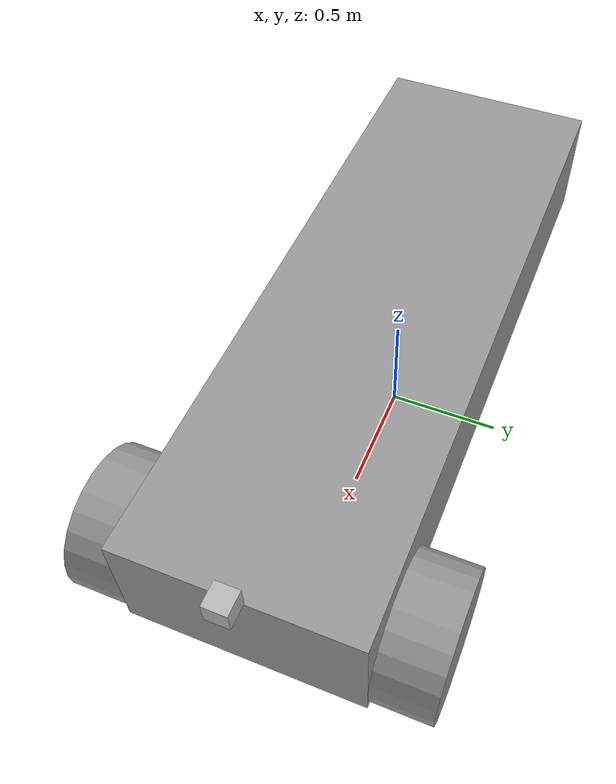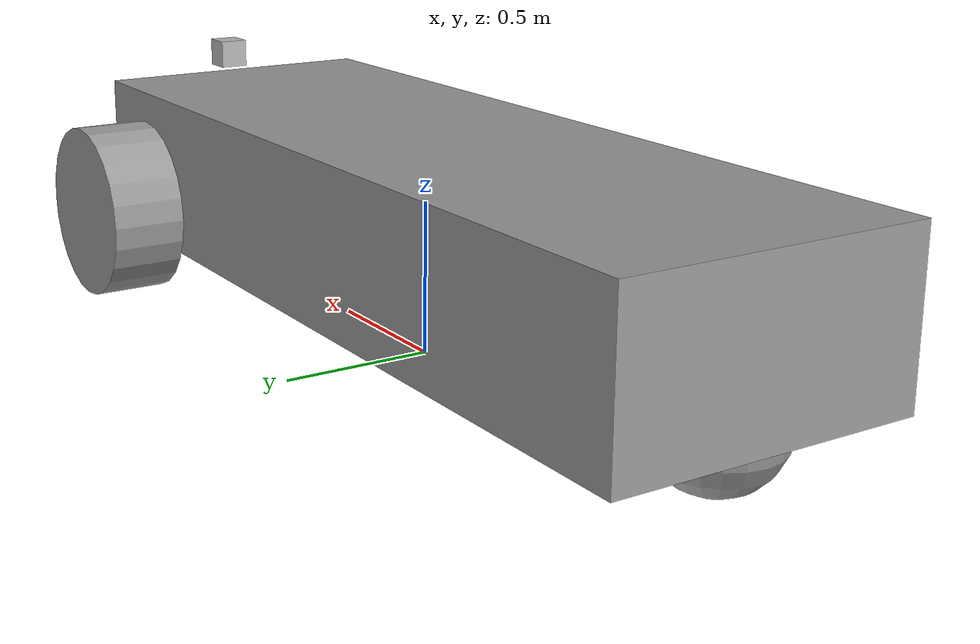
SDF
<?xml version='1.0'?>
<sdf version='1.7'>
  <model name='firstRobot_v2'>
    <link name='chassis'>
      <inertial>
        <mass>1.58642</mass>
        <inertia>
          <ixx>0.169655</ixx>
          <ixy>0</ixy>
          <ixz>0</ixz>
          <iyy>1.21188</iyy>
          <iyz>0</iyz>
          <izz>1.30663</izz>
        </inertia>
        <pose>0 0 0 0 -0 0</pose>
      </inertial>
      <pose>-0.002598 -0.05824 0.44 0 -0 0</pose>
      <gravity>1</gravity>
      <self_collide>0</self_collide>
      <kinematic>0</kinematic>
      <enable_wind>0</enable_wind>
      <visual name='visual'>
        <pose>0 0 0 0 -0 0</pose>
        <geometry>
          <box>
            <size>2.98053 1 0.53226</size>
          </box>
        </geometry>
        <material>
          <lighting>1</lighting>
          <script>
            <uri>file://media/materials/scripts/gazebo.material</uri>
            <name>Gazebo/Grey</name>
          </script>
          <shader type='pixel'>
            <normal_map>__default__</normal_map>
          </shader>
          <ambient>0.3 0.3 0.3 1</ambient>
          <diffuse>0.7 0.7 0.7 1</diffuse>
          <specular>0.01 0.01 0.01 1</specular>
          <emissive>0 0 0 1</emissive>
        </material>
        <transparency>0</transparency>
        <cast_shadows>1</cast_shadows>
      </visual>
      <collision name='collision'>
        <laser_retro>0</laser_retro>
        <max_contacts>10</max_contacts>
        <pose>0 0 0 0 -0 0</pose>
        <geometry>
          <box>
            <size>2.98053 1 0.53226</size>
          </box>
        </geometry>
        <surface>
          <friction>
            <ode>
              <mu>1</mu>
              <mu2>1</mu2>
              <fdir1>0 0 0</fdir1>
              <slip1>0</slip1>
              <slip2>0</slip2>
            </ode>
            <torsional>
              <coefficient>1</coefficient>
              <patch_radius>0</patch_radius>
              <surface_radius>0</surface_radius>
              <use_patch_radius>1</use_patch_radius>
              <ode>
                <slip>0</slip>
              </ode>
            </torsional>
          </friction>
          <bounce>
            <restitution_coefficient>0</restitution_coefficient>
            <threshold>1e+06</threshold>
          </bounce>
          <contact>
            <collide_without_contact>0</collide_without_contact>
            <collide_without_contact_bitmask>1</collide_without_contact_bitmask>
            <collide_bitmask>1</collide_bitmask>
            <ode>
              <soft_cfm>0</soft_cfm>
              <soft_erp>0.2</soft_erp>
              <kp>1e+13</kp>
              <kd>1</kd>
              <max_vel>0.01</max_vel>
              <min_depth>0</min_depth>
            </ode>
            <bullet>
              <split_impulse>1</split_impulse>
              <split_impulse_penetration_threshold>-0.01</split_impulse_penetration_threshold>
              <soft_cfm>0</soft_cfm>
              <soft_erp>0.2</soft_erp>
              <kp>1e+13</kp>
              <kd>1</kd>
            </bullet>
          </contact>
        </surface>
      </collision>
    </link>
    <link name='caster'>
      <inertial>
        <mass>1</mass>
        <inertia>
          <ixx>0.1</ixx>
          <ixy>0</ixy>
          <ixz>0</ixz>
          <iyy>0.1</iyy>
          <iyz>0</iyz>
          <izz>0.1</izz>
        </inertia>
        <pose>0 0 0 0 -0 0</pose>
      </inertial>
      <pose>-1.29286 -0.05824 0.2 0 -0 0</pose>
      <gravity>1</gravity>
      <self_collide>0</self_collide>
      <kinematic>0</kinematic>
      <enable_wind>0</enable_wind>
      <visual name='visual'>
        <pose>0 0 0 0 -0 0</pose>
        <geometry>
          <sphere>
            <radius>0.2</radius>
          </sphere>
        </geometry>
        <material>
          <lighting>1</lighting>
          <script>
            <uri>file://media/materials/scripts/gazebo.material</uri>
            <name>Gazebo/Grey</name>
          </script>
          <shader type='pixel'>
            <normal_map>__default__</normal_map>
          </shader>
          <ambient>0.3 0.3 0.3 1</ambient>
          <diffuse>0.7 0.7 0.7 1</diffuse>
          <specular>0.01 0.01 0.01 1</specular>
          <emissive>0 0 0 1</emissive>
        </material>
        <transparency>0</transparency>
        <cast_shadows>1</cast_shadows>
      </visual>
      <collision name='collision'>
        <laser_retro>0</laser_retro>
        <max_contacts>10</max_contacts>
        <pose>0 0 0 0 -0 0</pose>
        <geometry>
          <sphere>
            <radius>0.2</radius>
          </sphere>
        </geometry>
        <surface>
          <friction>
            <ode>
              <mu>1</mu>
              <mu2>1</mu2>
              <fdir1>0 0 0</fdir1>
              <slip1>0</slip1>
              <slip2>0</slip2>
            </ode>
            <torsional>
              <coefficient>1</coefficient>
              <patch_radius>0</patch_radius>
              <surface_radius>0</surface_radius>
              <use_patch_radius>1</use_patch_radius>
              <ode>
                <slip>0</slip>
              </ode>
            </torsional>
          </friction>
          <bounce>
            <restitution_coefficient>0</restitution_coefficient>
            <threshold>1e+06</threshold>
          </bounce>
          <contact>
            <collide_without_contact>0</collide_without_contact>
            <collide_without_contact_bitmask>1</collide_without_contact_bitmask>
            <collide_bitmask>1</collide_bitmask>
            <ode>
              <soft_cfm>0</soft_cfm>
              <soft_erp>0.2</soft_erp>
              <kp>1e+13</kp>
              <kd>1</kd>
              <max_vel>0.01</max_vel>
              <min_depth>0</min_depth>
            </ode>
            <bullet>
              <split_impulse>1</split_impulse>
              <split_impulse_penetration_threshold>-0.01</split_impulse_penetration_threshold>
              <soft_cfm>0</soft_cfm>
              <soft_erp>0.2</soft_erp>
              <kp>1e+13</kp>
              <kd>1</kd>
            </bullet>
          </contact>
        </surface>
      </collision>
    </link>
    <link name='right_wheel'>
      <inertial>
        <mass>1</mass>
        <inertia>
          <ixx>0.145833</ixx>
          <ixy>0</ixy>
          <ixz>0</ixz>
          <iyy>0.145833</iyy>
          <iyz>0</iyz>
          <izz>0.125</izz>
        </inertia>
        <pose>0 0 0 0 -0 0</pose>
      </inertial>
      <pose>1.18766 -0.683479 0.3 1.57 -0 0</pose>
      <gravity>1</gravity>
      <self_collide>0</self_collide>
      <kinematic>0</kinematic>
      <enable_wind>0</enable_wind>
      <visual name='visual'>
        <pose>0 0 0 0 -0 0</pose>
        <geometry>
          <cylinder>
            <radius>0.3</radius>
            <length>0.25</length>
          </cylinder>
        </geometry>
        <material>
          <lighting>1</lighting>
          <script>
            <uri>file://media/materials/scripts/gazebo.material</uri>
            <name>Gazebo/Grey</name>
          </script>
          <shader type='pixel'>
            <normal_map>__default__</normal_map>
          </shader>
          <ambient>0.3 0.3 0.3 1</ambient>
          <diffuse>0.7 0.7 0.7 1</diffuse>
          <specular>0.01 0.01 0.01 1</specular>
          <emissive>0 0 0 1</emissive>
        </material>
        <transparency>0</transparency>
        <cast_shadows>1</cast_shadows>
      </visual>
      <collision name='collision'>
        <laser_retro>0</laser_retro>
        <max_contacts>10</max_contacts>
        <pose>0 0 0 0 -0 0</pose>
        <geometry>
          <cylinder>
            <radius>0.3</radius>
            <length>0.25</length>
          </cylinder>
        </geometry>
        <surface>
          <friction>
            <ode>
              <mu>1</mu>
              <mu2>1</mu2>
              <fdir1>0 0 0</fdir1>
              <slip1>0</slip1>
              <slip2>0</slip2>
            </ode>
            <torsional>
              <coefficient>1</coefficient>
              <patch_radius>0</patch_radius>
              <surface_radius>0</surface_radius>
              <use_patch_radius>1</use_patch_radius>
              <ode>
                <slip>0</slip>
              </ode>
            </torsional>
          </friction>
          <bounce>
            <restitution_coefficient>0</restitution_coefficient>
            <threshold>1e+06</threshold>
          </bounce>
          <contact>
            <collide_without_contact>0</collide_without_contact>
            <collide_without_contact_bitmask>1</collide_without_contact_bitmask>
            <collide_bitmask>1</collide_bitmask>
            <ode>
              <soft_cfm>0</soft_cfm>
              <soft_erp>0.2</soft_erp>
              <kp>1e+13</kp>
              <kd>1</kd>
              <max_vel>0.01</max_vel>
              <min_depth>0</min_depth>
            </ode>
            <bullet>
              <split_impulse>1</split_impulse>
              <split_impulse_penetration_threshold>-0.01</split_impulse_penetration_threshold>
              <soft_cfm>0</soft_cfm>
              <soft_erp>0.2</soft_erp>
              <kp>1e+13</kp>
              <kd>1</kd>
            </bullet>
          </contact>
        </surface>
      </collision>
    </link>
    <link name='left_wheel'>
      <inertial>
        <mass>1</mass>
        <inertia>
          <ixx>0.145833</ixx>
          <ixy>0</ixy>
          <ixz>0</ixz>
          <iyy>0.145833</iyy>
          <iyz>0</iyz>
          <izz>0.125</izz>
        </inertia>
        <pose>0 0 0 0 -0 0</pose>
      </inertial>
      <pose>1.18767 0.566999 0.3 1.57 -0 0</pose>
      <gravity>1</gravity>
      <self_collide>0</self_collide>
      <kinematic>0</kinematic>
      <enable_wind>0</enable_wind>
      <visual name='visual'>
        <pose>0 0 0 0 -0 0</pose>
        <geometry>
          <cylinder>
            <radius>0.3</radius>
            <length>0.25</length>
          </cylinder>
        </geometry>
        <material>
          <lighting>1</lighting>
          <script>
            <uri>file://media/materials/scripts/gazebo.material</uri>
            <name>Gazebo/Grey</name>
          </script>
          <shader type='pixel'>
            <normal_map>__default__</normal_map>
          </shader>
          <ambient>0.3 0.3 0.3 1</ambient>
          <diffuse>0.7 0.7 0.7 1</diffuse>
          <specular>0.01 0.01 0.01 1</specular>
          <emissive>0 0 0 1</emissive>
        </material>
        <transparency>0</transparency>
        <cast_shadows>1</cast_shadows>
      </visual>
      <collision name='collision'>
        <laser_retro>0</laser_retro>
        <max_contacts>10</max_contacts>
        <pose>0 0 0 0 -0 0</pose>
        <geometry>
          <cylinder>
            <radius>0.3</radius>
            <length>0.25</length>
          </cylinder>
        </geometry>
        <surface>
          <friction>
            <ode>
              <mu>1</mu>
              <mu2>1</mu2>
              <fdir1>0 0 0</fdir1>
              <slip1>0</slip1>
              <slip2>0</slip2>
            </ode>
            <torsional>
              <coefficient>1</coefficient>
              <patch_radius>0</patch_radius>
              <surface_radius>0</surface_radius>
              <use_patch_radius>1</use_patch_radius>
              <ode>
                <slip>0</slip>
              </ode>
            </torsional>
          </friction>
          <bounce>
            <restitution_coefficient>0</restitution_coefficient>
            <threshold>1e+06</threshold>
          </bounce>
          <contact>
            <collide_without_contact>0</collide_without_contact>
            <collide_without_contact_bitmask>1</collide_without_contact_bitmask>
            <collide_bitmask>1</collide_bitmask>
            <ode>
              <soft_cfm>0</soft_cfm>
              <soft_erp>0.2</soft_erp>
              <kp>1e+13</kp>
              <kd>1</kd>
              <max_vel>0.01</max_vel>
              <min_depth>0</min_depth>
            </ode>
            <bullet>
              <split_impulse>1</split_impulse>
              <split_impulse_penetration_threshold>-0.01</split_impulse_penetration_threshold>
              <soft_cfm>0</soft_cfm>
              <soft_erp>0.2</soft_erp>
              <kp>1e+13</kp>
              <kd>1</kd>
            </bullet>
          </contact>
        </surface>
      </collision>
    </link>
    <model name='depth_camera'>
      <link name='link'>
        <pose>0 0 0.05 0 -0 0</pose>
        <inertial>
          <mass>0.1</mass>
          <inertia>
            <ixx>0.000166667</ixx>
            <iyy>0.000166667</iyy>
            <izz>0.000166667</izz>
            <ixy>0</ixy>
            <ixz>0</ixz>
            <iyz>0</iyz>
          </inertia>
          <pose>0 0 0 0 -0 0</pose>
        </inertial>
        <collision name='collision'>
          <geometry>
            <box>
              <size>0.1 0.1 0.1</size>
            </box>
          </geometry>
          <max_contacts>10</max_contacts>
          <surface>
            <contact>
              <ode/>
            </contact>
            <bounce/>
            <friction>
              <torsional>
                <ode/>
              </torsional>
              <ode/>
            </friction>
          </surface>
        </collision>
        <visual name='visual'>
          <geometry>
            <box>
              <size>0.1 0.1 0.1</size>
            </box>
          </geometry>
        </visual>
        <sensor name='camera' type='depth'>
          <camera>
            <horizontal_fov>1.047</horizontal_fov>
            <image>
              <width>320</width>
              <height>240</height>
            </image>
            <clip>
              <near>0.1</near>
              <far>100</far>
            </clip>
          </camera>

          <plugin name="camera_controller" filename="libgazebo_ros_camera.so">
            <ros>
              <namespace>cam</namespace>

              <!-- topics need to be prefixed with camera_name for remapping -->
              <remapping>my_robot_cam/image_raw:=my_robot_cam/image_demo</remapping>
              <remapping>my_robot_cam/depth/image_raw:=my_robot_cam/depth_demo</remapping>
              <remapping>my_robot_cam/camera_info:=my_robot_cam/raw_cam_info_demo</remapping>
              <remapping>my_robot_cam/depth/camera_info:=my_robot_cam/depth_cam_info_demo</remapping>
              <remapping>my_robot_cam/points:=my_robot_cam/points_demo</remapping>
            </ros>

            <!-- omit camera_name to default to sensor name -->
            <camera_name>my_robot_cam</camera_name>

            <min_depth>0.1</min_depth>
            <max_depth>500</max_depth>
          </plugin>

          <always_on>1</always_on>
          <update_rate>30</update_rate>
          <visualize>1</visualize>
        </sensor>
        <self_collide>0</self_collide>
        <enable_wind>0</enable_wind>
        <kinematic>0</kinematic>
      </link>
      <pose>1.53556 -0.053876 0.71688 0 0 0</pose>
    </model>
    <joint name='caster_joint' type='ball'>
      <parent>chassis</parent>
      <child>caster</child>
      <pose>0 0 0 0 -0 0</pose>
      <physics>
        <ode>
          <limit>
            <cfm>0</cfm>
            <erp>0.2</erp>
          </limit>
          <suspension>
            <cfm>0</cfm>
            <erp>0.2</erp>
          </suspension>
        </ode>
      </physics>
    </joint>
    <joint name='right_wheel_joint' type='revolute'>
      <parent>chassis</parent>
      <child>right_wheel</child>
      <pose>0 0 0 0 -0 0</pose>
      <axis>
        <xyz>0 0 1</xyz>
        <limit>
          <lower>-1.79769e+308</lower>
          <upper>1.79769e+308</upper>
          <effort>-1</effort>
          <velocity>-1</velocity>
        </limit>
        <dynamics>
          <spring_reference>0</spring_reference>
          <spring_stiffness>0</spring_stiffness>
          <damping>0</damping>
          <friction>0</friction>
        </dynamics>
      </axis>
      <physics>
        <ode>
          <limit>
            <cfm>0</cfm>
            <erp>0.2</erp>
          </limit>
          <suspension>
            <cfm>0</cfm>
            <erp>0.2</erp>
          </suspension>
        </ode>
      </physics>
    </joint>
    <joint name='left_wheel_joint' type='revolute'>
      <parent>chassis</parent>
      <child>left_wheel</child>
      <pose>0 0 0 0 -0 0</pose>
      <axis>
        <xyz>0 0 1</xyz>
        <limit>
          <lower>-1.79769e+308</lower>
          <upper>1.79769e+308</upper>
          <effort>-1</effort>
          <velocity>-1</velocity>
        </limit>
        <dynamics>
          <spring_reference>0</spring_reference>
          <spring_stiffness>0</spring_stiffness>
          <damping>0</damping>
          <friction>0</friction>
        </dynamics>
      </axis>
      <physics>
        <ode>
          <limit>
            <cfm>0</cfm>
            <erp>0.2</erp>
          </limit>
          <suspension>
            <cfm>0</cfm>
            <erp>0.2</erp>
          </suspension>
        </ode>
      </physics>
    </joint>
    <joint name='depth_camera_joint' type='fixed'>
      <parent>chassis</parent>
      <child>depth_camera::link</child>
      <pose>0 0 0 0 -0 0</pose>
      <physics>
        <ode>
          <limit>
            <cfm>0</cfm>
            <erp>0.2</erp>
          </limit>
          <suspension>
            <cfm>0</cfm>
            <erp>0.2</erp>
          </suspension>
        </ode>
      </physics>
    </joint>
    <static>0</static>
    <allow_auto_disable>1</allow_auto_disable>

  <plugin name="differential_drive_controller" filename="libgazebo_ros_diff_drive.so">

    <!-- wheels -->
    <left_joint>left_wheel_joint</left_joint>
    <right_joint>right_wheel_joint</right_joint>

    <!-- kinematics -->
    <wheel_separation>1.25</wheel_separation>
    <wheel_diameter>0.6</wheel_diameter>

    <!-- limits -->
    <max_wheel_torque>20</max_wheel_torque>
    <max_wheel_acceleration>1.0</max_wheel_acceleration>

    <!-- input -->
    <command_topic>cmd_vel</command_topic>

    <!-- output -->
    <publish_odom>true</publish_odom>
    <publish_odom_tf>true</publish_odom_tf>
    <publish_wheel_tf>true</publish_wheel_tf>

    <odometry_topic>odom</odometry_topic>
    <odometry_frame>odom</odometry_frame>
    <robot_base_frame>chassis</robot_base_frame>
  </plugin>

  </model>
</sdf>
